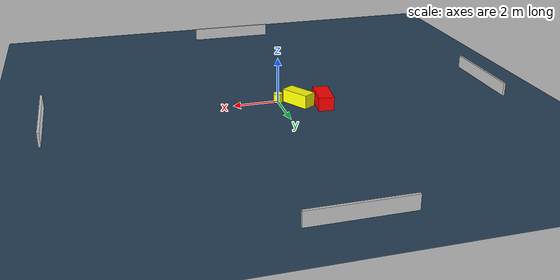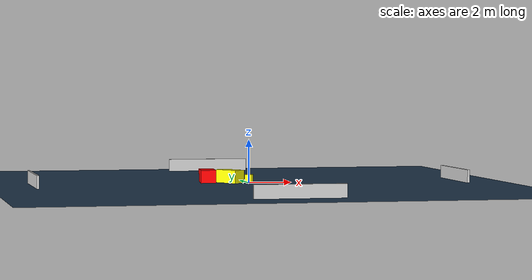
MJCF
<?xml version="1.0" ?>
<mujoco model="generated_environment">
  <option timestep="0.01" integrator="RK4" cone="elliptic"/>
  <default>
    <geom density="1"/>
  </default>
  <asset>
    <texture builtin="gradient" height="3072" name="skybox" rgb1="0.3 0.5 0.7" rgb2="0 0 0" type="skybox" width="512"/>
    <texture builtin="checker" height="300" name="groundplane" rgb1="0.2 0.3 0.4" rgb2="0.1 0.2 0.3" type="2d" width="300"/>
    <material name="groundplane" reflectance="0.2" texrepeat="5 5" texture="groundplane"/>
  </asset>
  <worldbody>
    <light dir="0 0 -1" directional="true" pos="0 0 1.5"/>
    <geom condim="3" friction="0.5 0.005 0.001" material="groundplane" name="floor" pos="0 0 0" size="0 0 0.05" type="plane"/>
    <body name="walls">
      <geom name="wall_1" condim="4" pos="-10.0 0.0 0.3" rgba="0.800000011920929 0.800000011920929 0.800000011920929 1.0" size="0.05 2.0 0.3" type="box"/>
      <geom name="wall_2" condim="4" pos="10.0 0.0 0.3" rgba="0.800000011920929 0.800000011920929 0.800000011920929 1.0" size="0.05 2.0 0.3" type="box"/>
      <geom name="wall_3" condim="4" pos="0.0 -10.0 0.3" rgba="0.800000011920929 0.800000011920929 0.800000011920929 1.0" size="2.0 0.05 0.3" type="box"/>
      <geom name="wall_4" condim="4" pos="0.0 10.0 0.3" rgba="0.800000011920929 0.800000011920929 0.800000011920929 1.0" size="2.0 0.05 0.3" type="box"/>
    </body>
    <body name="robot">
      <joint name="joint_x" type="slide" pos="0 0 0" axis="1 0 0"/>
      <joint name="joint_y" type="slide" pos="0 0 0" axis="0 1 0"/>
      <geom name="robot" type="cylinder" pos="0.0 0.0 0.2" size="0.2 0.2 0.0" mass="5.0" friction="1.0 0.005 0.0001" condim="4" rgba="1.0 1.0 0.0 1.0"/>
    </body>
    <body name="obstacle_1_movable">
      <geom name="obstacle_1_movable" condim="4" pos="-0.8169637792108982 0.4378273777665674 0.3" euler="0 0 32.73762132319129" friction="0.0 0.005 0.001" rgba="1.0 1.0 0.0 1.0" size="0.29351039237881915 0.65007738816025 0.3" type="box" mass="0.1"/>
      <joint type="free"/>
    </body>
    <body name="obstacle_2_static">
      <geom name="obstacle_2_static" condim="4" pos="-1.7988720101457214 0.85721536688232 0.3" euler="0 0 353.71527214982933" friction="0.0 0.005 0.001" rgba="1.0 0.0 0.0 1.0" size="0.34036494577041543 0.6868545615665081 0.3" type="box"/>
    </body>
  </worldbody>
  <actuator>
    <motor name="actuator_x" joint="joint_x" gear="1" ctrlrange="-1 1"/>
    <motor name="actuator_y" joint="joint_y" gear="1" ctrlrange="-1 1"/>
  </actuator>
</mujoco>
